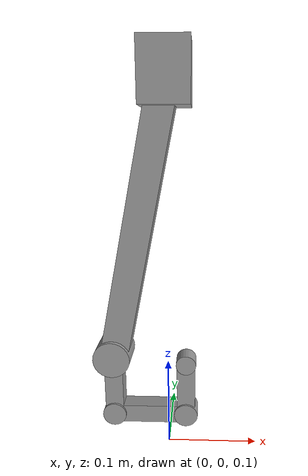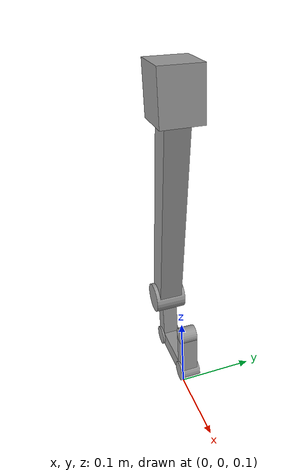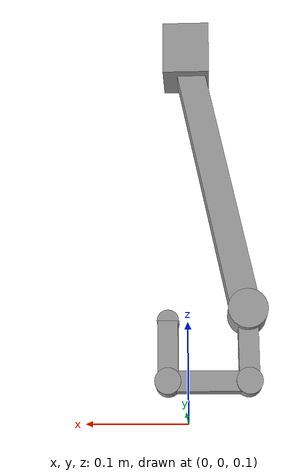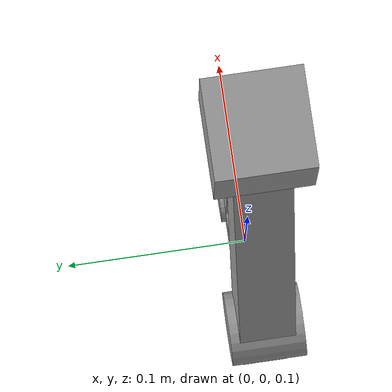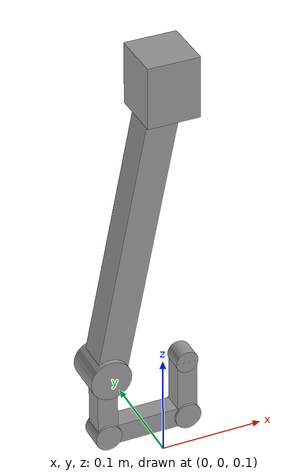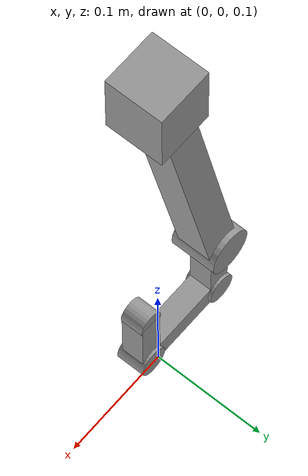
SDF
<?xml version='1.0'?>
<sdf version='1.6'>
  <model name='Hook_01'>
    <model name='Hook_01'>
      <link name='hook_base'>
        <pose frame=''>-0 0 0.5 0 -0 0</pose>
        <inertial>
          <mass>0.01</mass>
          <inertia>
            <ixx>0.166667</ixx>
            <ixy>0</ixy>
            <ixz>0</ixz>
            <iyy>0.166667</iyy>
            <iyz>0</iyz>
            <izz>0.166667</izz>
          </inertia>
          <pose frame=''>0 0 0 0 -0 0</pose>
        </inertial>
        <gravity>1</gravity>
        <self_collide>0</self_collide>
        <kinematic>0</kinematic>
        <visual name='visual'>
          <pose frame=''>0 0 0 0 -0 0</pose>
          <geometry>
            <box>
              <size>0.05 0.05 0.06</size>
            </box>
          </geometry>
          <material>
            <lighting>1</lighting>
            <script>
              <uri>file://media/materials/scripts/gazebo.material</uri>
              <name>Gazebo/Grey</name>
            </script>
            <ambient>0.3 0.3 0.3 1</ambient>
            <diffuse>0.7 0.7 0.7 1</diffuse>
            <specular>0.01 0.01 0.01 1</specular>
            <emissive>0 0 0 1</emissive>
            <shader type='vertex'>
              <normal_map>__default__</normal_map>
            </shader>
          </material>
          <cast_shadows>1</cast_shadows>
          <transparency>0</transparency>
        </visual>
        <collision name='collision'>
          <laser_retro>0</laser_retro>
          <max_contacts>10</max_contacts>
          <pose frame=''>0 0 0 0 -0 0</pose>
          <geometry>
            <box>
              <size>0.05 0.05 0.06</size>
            </box>
          </geometry>
          <surface>
            <friction>
              <ode>
                <mu>1</mu>
                <mu2>1</mu2>
                <fdir1>0 0 0</fdir1>
                <slip1>0</slip1>
                <slip2>0</slip2>
              </ode>
              <torsional>
                <coefficient>1</coefficient>
                <patch_radius>0</patch_radius>
                <surface_radius>0</surface_radius>
                <use_patch_radius>1</use_patch_radius>
                <ode>
                  <slip>0</slip>
                </ode>
              </torsional>
            </friction>
            <bounce>
              <restitution_coefficient>0</restitution_coefficient>
              <threshold>1e+06</threshold>
            </bounce>
            <contact>
              <collide_without_contact>0</collide_without_contact>
              <collide_without_contact_bitmask>1</collide_without_contact_bitmask>
              <collide_bitmask>1</collide_bitmask>
              <ode>
                <soft_cfm>0</soft_cfm>
                <soft_erp>0.2</soft_erp>
                <kp>1e+13</kp>
                <kd>1</kd>
                <max_vel>0.01</max_vel>
                <min_depth>0</min_depth>
              </ode>
              <bullet>
                <split_impulse>1</split_impulse>
                <split_impulse_penetration_threshold>-0.01</split_impulse_penetration_threshold>
                <soft_cfm>0</soft_cfm>
                <soft_erp>0.2</soft_erp>
                <kp>1e+13</kp>
                <kd>1</kd>
              </bullet>
            </contact>
          </surface>
        </collision>
      </link>
      <link name='arm'>
        <pose frame=''>-0 0 0.35 0 -0 0</pose>
        <inertial>
          <mass>0.02</mass>
          <inertia>
            <ixx>0.166667</ixx>
            <ixy>0</ixy>
            <ixz>0</ixz>
            <iyy>0.166667</iyy>
            <iyz>0</iyz>
            <izz>0.166667</izz>
          </inertia>
          <pose frame=''>0 0 0 0 -0 0</pose>
        </inertial>
        <gravity>1</gravity>
        <self_collide>0</self_collide>
        <kinematic>0</kinematic>
        <visual name='visual'>
          <pose frame=''>-0.03 0 0 0 0.2 0</pose>
          <geometry>
            <box>
              <size>0.03 0.03 0.3</size>
            </box>
          </geometry>
          <material>
            <lighting>1</lighting>
            <script>
              <uri>file://media/materials/scripts/gazebo.material</uri>
              <name>Gazebo/Grey</name>
            </script>
            <ambient>0.3 0.3 0.3 1</ambient>
            <diffuse>0.7 0.7 0.7 1</diffuse>
            <specular>0.01 0.01 0.01 1</specular>
            <emissive>0 0 0 1</emissive>
            <shader type='vertex'>
              <normal_map>__default__</normal_map>
            </shader>
          </material>
          <cast_shadows>1</cast_shadows>
          <transparency>0</transparency>
        </visual>
        <collision name='collision'>
          <laser_retro>0</laser_retro>
          <max_contacts>10</max_contacts>
          <pose frame=''>-0.03 0 0 0 0.2 0</pose>
          <geometry>
            <box>
              <size>0.03 0.03 0.3</size>
            </box>
          </geometry>
          <surface>
            <friction>
              <ode>
                <mu>1</mu>
                <mu2>1</mu2>
                <fdir1>0 0 0</fdir1>
                <slip1>0</slip1>
                <slip2>0</slip2>
              </ode>
              <torsional>
                <coefficient>1</coefficient>
                <patch_radius>0</patch_radius>
                <surface_radius>0</surface_radius>
                <use_patch_radius>1</use_patch_radius>
                <ode>
                  <slip>0</slip>
                </ode>
              </torsional>
            </friction>
            <bounce>
              <restitution_coefficient>0</restitution_coefficient>
              <threshold>1e+06</threshold>
            </bounce>
            <contact>
              <collide_without_contact>0</collide_without_contact>
              <collide_without_contact_bitmask>1</collide_without_contact_bitmask>
              <collide_bitmask>1</collide_bitmask>
              <ode>
                <soft_cfm>0</soft_cfm>
                <soft_erp>0.2</soft_erp>
                <kp>1e+13</kp>
                <kd>1</kd>
                <max_vel>0.01</max_vel>
                <min_depth>0</min_depth>
              </ode>
              <bullet>
                <split_impulse>1</split_impulse>
                <split_impulse_penetration_threshold>-0.01</split_impulse_penetration_threshold>
                <soft_cfm>0</soft_cfm>
                <soft_erp>0.2</soft_erp>
                <kp>1e+13</kp>
                <kd>1</kd>
              </bullet>
            </contact>
          </surface>
        </collision>
      </link>
      <link name='ankle'>
        <pose frame=''>-0.06 0 0.21 1.57 -0 0</pose>
        <inertial>
          <mass>0.01</mass>
          <inertia>
            <ixx>0.145833</ixx>
            <ixy>0</ixy>
            <ixz>0</ixz>
            <iyy>0.145833</iyy>
            <iyz>0</iyz>
            <izz>0.125</izz>
          </inertia>
          <pose frame=''>0 0 0 0 -0 0</pose>
        </inertial>
        <gravity>1</gravity>
        <self_collide>0</self_collide>
        <kinematic>0</kinematic>
        <visual name='visual'>
          <pose frame=''>0 0 0 0 -0 0</pose>
          <geometry>
            <cylinder>
              <radius>0.02</radius>
              <length>0.04</length>
            </cylinder>
          </geometry>
          <material>
            <lighting>1</lighting>
            <script>
              <uri>file://media/materials/scripts/gazebo.material</uri>
              <name>Gazebo/Grey</name>
            </script>
            <ambient>0.3 0.3 0.3 1</ambient>
            <diffuse>0.7 0.7 0.7 1</diffuse>
            <specular>0.01 0.01 0.01 1</specular>
            <emissive>0 0 0 1</emissive>
            <shader type='vertex'>
              <normal_map>__default__</normal_map>
            </shader>
          </material>
          <cast_shadows>1</cast_shadows>
          <transparency>0</transparency>
        </visual>
        <collision name='collision'>
          <laser_retro>0</laser_retro>
          <max_contacts>10</max_contacts>
          <pose frame=''>0 0 0 0 -0 0</pose>
          <geometry>
            <cylinder>
              <radius>0.02</radius>
              <length>0.04</length>
            </cylinder>
          </geometry>
          <surface>
            <friction>
              <ode>
                <mu>1</mu>
                <mu2>1</mu2>
                <fdir1>0 0 0</fdir1>
                <slip1>0</slip1>
                <slip2>0</slip2>
              </ode>
              <torsional>
                <coefficient>1</coefficient>
                <patch_radius>0</patch_radius>
                <surface_radius>0</surface_radius>
                <use_patch_radius>1</use_patch_radius>
                <ode>
                  <slip>0</slip>
                </ode>
              </torsional>
            </friction>
            <bounce>
              <restitution_coefficient>0</restitution_coefficient>
              <threshold>1e+06</threshold>
            </bounce>
            <contact>
              <collide_without_contact>0</collide_without_contact>
              <collide_without_contact_bitmask>1</collide_without_contact_bitmask>
              <collide_bitmask>1</collide_bitmask>
              <ode>
                <soft_cfm>0</soft_cfm>
                <soft_erp>0.2</soft_erp>
                <kp>1e+13</kp>
                <kd>1</kd>
                <max_vel>0.01</max_vel>
                <min_depth>0</min_depth>
              </ode>
              <bullet>
                <split_impulse>1</split_impulse>
                <split_impulse_penetration_threshold>-0.01</split_impulse_penetration_threshold>
                <soft_cfm>0</soft_cfm>
                <soft_erp>0.2</soft_erp>
                <kp>1e+13</kp>
                <kd>1</kd>
              </bullet>
            </contact>
          </surface>
        </collision>
      </link>
      <link name='bone_1'>
        <pose frame=''>-0.06 0 0.18 0 -0 0</pose>
        <inertial>
          <mass>0.01</mass>
          <inertia>
            <ixx>0.166667</ixx>
            <ixy>0</ixy>
            <ixz>0</ixz>
            <iyy>0.166667</iyy>
            <iyz>0</iyz>
            <izz>0.166667</izz>
          </inertia>
          <pose frame=''>0 0 0 0 -0 0</pose>
        </inertial>
        <self_collide>0</self_collide>
        <kinematic>0</kinematic>
        <gravity>1</gravity>
        <visual name='visual'>
          <pose frame=''>0 0 0 0 -0 0</pose>
          <geometry>
            <box>
              <size>0.02 0.02 0.08</size>
            </box>
          </geometry>
          <material>
            <lighting>1</lighting>
            <script>
              <uri>file://media/materials/scripts/gazebo.material</uri>
              <name>Gazebo/Grey</name>
            </script>
            <ambient>0.3 0.3 0.3 1</ambient>
            <diffuse>0.7 0.7 0.7 1</diffuse>
            <specular>0.01 0.01 0.01 1</specular>
            <emissive>0 0 0 1</emissive>
            <shader type='vertex'>
              <normal_map>__default__</normal_map>
            </shader>
          </material>
          <cast_shadows>1</cast_shadows>
          <transparency>0</transparency>
        </visual>
        <collision name='collision'>
          <laser_retro>0</laser_retro>
          <max_contacts>10</max_contacts>
          <pose frame=''>0 0 0 0 -0 0</pose>
          <geometry>
            <box>
              <size>0.02 0.02 0.08</size>
            </box>
          </geometry>
          <surface>
            <friction>
              <ode>
                <mu>1</mu>
                <mu2>1</mu2>
                <fdir1>0 0 0</fdir1>
                <slip1>0</slip1>
                <slip2>0</slip2>
              </ode>
              <torsional>
                <coefficient>1</coefficient>
                <patch_radius>0</patch_radius>
                <surface_radius>0</surface_radius>
                <use_patch_radius>1</use_patch_radius>
                <ode>
                  <slip>0</slip>
                </ode>
              </torsional>
            </friction>
            <bounce>
              <restitution_coefficient>0</restitution_coefficient>
              <threshold>1e+06</threshold>
            </bounce>
            <contact>
              <collide_without_contact>0</collide_without_contact>
              <collide_without_contact_bitmask>1</collide_without_contact_bitmask>
              <collide_bitmask>1</collide_bitmask>
              <ode>
                <soft_cfm>0</soft_cfm>
                <soft_erp>0.2</soft_erp>
                <kp>1e+13</kp>
                <kd>1</kd>
                <max_vel>0.01</max_vel>
                <min_depth>0</min_depth>
              </ode>
              <bullet>
                <split_impulse>1</split_impulse>
                <split_impulse_penetration_threshold>-0.01</split_impulse_penetration_threshold>
                <soft_cfm>0</soft_cfm>
                <soft_erp>0.2</soft_erp>
                <kp>1e+13</kp>
                <kd>1</kd>
              </bullet>
            </contact>
          </surface>
        </collision>
      </link>
      <link name='finger_joint_1'>
        <pose frame=''>-0.06 0 0.14 1.57 -0 0</pose>
        <inertial>
          <mass>0.01</mass>
          <inertia>
            <ixx>0.145833</ixx>
            <ixy>0</ixy>
            <ixz>0</ixz>
            <iyy>0.145833</iyy>
            <iyz>0</iyz>
            <izz>0.125</izz>
          </inertia>
          <pose frame=''>0 0 0 0 -0 0</pose>
        </inertial>
        <self_collide>0</self_collide>
        <kinematic>0</kinematic>
        <gravity>1</gravity>
        <visual name='visual'>
          <pose frame=''>0 0 0 0 -0 0</pose>
          <geometry>
            <cylinder>
              <radius>0.013</radius>
              <length>0.025</length>
            </cylinder>
          </geometry>
          <material>
            <lighting>1</lighting>
            <script>
              <uri>file://media/materials/scripts/gazebo.material</uri>
              <name>Gazebo/Grey</name>
            </script>
            <ambient>0.3 0.3 0.3 1</ambient>
            <diffuse>0.7 0.7 0.7 1</diffuse>
            <specular>0.01 0.01 0.01 1</specular>
            <emissive>0 0 0 1</emissive>
            <shader type='vertex'>
              <normal_map>__default__</normal_map>
            </shader>
          </material>
          <cast_shadows>1</cast_shadows>
          <transparency>0</transparency>
        </visual>
        <collision name='collision'>
          <laser_retro>0</laser_retro>
          <max_contacts>10</max_contacts>
          <pose frame=''>0 0 0 0 -0 0</pose>
          <geometry>
            <cylinder>
              <radius>0.013</radius>
              <length>0.025</length>
            </cylinder>
          </geometry>
          <surface>
            <friction>
              <ode>
                <mu>1</mu>
                <mu2>1</mu2>
                <fdir1>0 0 0</fdir1>
                <slip1>0</slip1>
                <slip2>0</slip2>
              </ode>
              <torsional>
                <coefficient>1</coefficient>
                <patch_radius>0</patch_radius>
                <surface_radius>0</surface_radius>
                <use_patch_radius>1</use_patch_radius>
                <ode>
                  <slip>0</slip>
                </ode>
              </torsional>
            </friction>
            <bounce>
              <restitution_coefficient>0</restitution_coefficient>
              <threshold>1e+06</threshold>
            </bounce>
            <contact>
              <collide_without_contact>0</collide_without_contact>
              <collide_without_contact_bitmask>1</collide_without_contact_bitmask>
              <collide_bitmask>1</collide_bitmask>
              <ode>
                <soft_cfm>0</soft_cfm>
                <soft_erp>0.2</soft_erp>
                <kp>1e+13</kp>
                <kd>1</kd>
                <max_vel>0.01</max_vel>
                <min_depth>0</min_depth>
              </ode>
              <bullet>
                <split_impulse>1</split_impulse>
                <split_impulse_penetration_threshold>-0.01</split_impulse_penetration_threshold>
                <soft_cfm>0</soft_cfm>
                <soft_erp>0.2</soft_erp>
                <kp>1e+13</kp>
                <kd>1</kd>
              </bullet>
            </contact>
          </surface>
        </collision>
      </link>
      <link name='bone_2'>
        <pose frame=''>-0.02 0 0.14 0 -0 0</pose>
        <inertial>
          <mass>0.01</mass>
          <inertia>
            <ixx>0.166667</ixx>
            <ixy>0</ixy>
            <ixz>0</ixz>
            <iyy>0.166667</iyy>
            <iyz>0</iyz>
            <izz>0.166667</izz>
          </inertia>
          <pose frame=''>0 0 0 0 -0 0</pose>
        </inertial>
        <self_collide>0</self_collide>
        <kinematic>0</kinematic>
        <gravity>1</gravity>
        <visual name='visual'>
          <pose frame=''>0 0 0 0 -0 0</pose>
          <geometry>
            <box>
              <size>0.08 0.02 0.02</size>
            </box>
          </geometry>
          <material>
            <lighting>1</lighting>
            <script>
              <uri>file://media/materials/scripts/gazebo.material</uri>
              <name>Gazebo/Grey</name>
            </script>
            <ambient>0.3 0.3 0.3 1</ambient>
            <diffuse>0.7 0.7 0.7 1</diffuse>
            <specular>0.01 0.01 0.01 1</specular>
            <emissive>0 0 0 1</emissive>
            <shader type='vertex'>
              <normal_map>__default__</normal_map>
            </shader>
          </material>
          <cast_shadows>1</cast_shadows>
          <transparency>0</transparency>
        </visual>
        <collision name='collision'>
          <laser_retro>0</laser_retro>
          <max_contacts>10</max_contacts>
          <pose frame=''>0 0 0 0 -0 0</pose>
          <geometry>
            <box>
              <size>0.08 0.02 0.02</size>
            </box>
          </geometry>
          <surface>
            <friction>
              <ode>
                <mu>1</mu>
                <mu2>1</mu2>
                <fdir1>0 0 0</fdir1>
                <slip1>0</slip1>
                <slip2>0</slip2>
              </ode>
              <torsional>
                <coefficient>1</coefficient>
                <patch_radius>0</patch_radius>
                <surface_radius>0</surface_radius>
                <use_patch_radius>1</use_patch_radius>
                <ode>
                  <slip>0</slip>
                </ode>
              </torsional>
            </friction>
            <bounce>
              <restitution_coefficient>0</restitution_coefficient>
              <threshold>1e+06</threshold>
            </bounce>
            <contact>
              <collide_without_contact>0</collide_without_contact>
              <collide_without_contact_bitmask>1</collide_without_contact_bitmask>
              <collide_bitmask>1</collide_bitmask>
              <ode>
                <soft_cfm>0</soft_cfm>
                <soft_erp>0.2</soft_erp>
                <kp>1e+13</kp>
                <kd>1</kd>
                <max_vel>0.01</max_vel>
                <min_depth>0</min_depth>
              </ode>
              <bullet>
                <split_impulse>1</split_impulse>
                <split_impulse_penetration_threshold>-0.01</split_impulse_penetration_threshold>
                <soft_cfm>0</soft_cfm>
                <soft_erp>0.2</soft_erp>
                <kp>1e+13</kp>
                <kd>1</kd>
              </bullet>
            </contact>
          </surface>
        </collision>
      </link>
      <link name='finger_joint_2'>
        <pose frame=''>0.02 0 0.14 1.57 -0 0</pose>
        <inertial>
          <mass>0.01</mass>
          <inertia>
            <ixx>0.145833</ixx>
            <ixy>0</ixy>
            <ixz>0</ixz>
            <iyy>0.145833</iyy>
            <iyz>0</iyz>
            <izz>0.125</izz>
          </inertia>
          <pose frame=''>0 0 0 0 -0 0</pose>
        </inertial>
        <self_collide>0</self_collide>
        <kinematic>0</kinematic>
        <gravity>1</gravity>
        <visual name='visual'>
          <pose frame=''>0 0 0 0 -0 0</pose>
          <geometry>
            <cylinder>
              <radius>0.013</radius>
              <length>0.025</length>
            </cylinder>
          </geometry>
          <material>
            <lighting>1</lighting>
            <script>
              <uri>file://media/materials/scripts/gazebo.material</uri>
              <name>Gazebo/Grey</name>
            </script>
            <ambient>0.3 0.3 0.3 1</ambient>
            <diffuse>0.7 0.7 0.7 1</diffuse>
            <specular>0.01 0.01 0.01 1</specular>
            <emissive>0 0 0 1</emissive>
            <shader type='vertex'>
              <normal_map>__default__</normal_map>
            </shader>
          </material>
          <cast_shadows>1</cast_shadows>
          <transparency>0</transparency>
        </visual>
        <collision name='collision'>
          <laser_retro>0</laser_retro>
          <max_contacts>10</max_contacts>
          <pose frame=''>0 0 0 0 -0 0</pose>
          <geometry>
            <cylinder>
              <radius>0.013</radius>
              <length>0.025</length>
            </cylinder>
          </geometry>
          <surface>
            <friction>
              <ode>
                <mu>1</mu>
                <mu2>1</mu2>
                <fdir1>0 0 0</fdir1>
                <slip1>0</slip1>
                <slip2>0</slip2>
              </ode>
              <torsional>
                <coefficient>1</coefficient>
                <patch_radius>0</patch_radius>
                <surface_radius>0</surface_radius>
                <use_patch_radius>1</use_patch_radius>
                <ode>
                  <slip>0</slip>
                </ode>
              </torsional>
            </friction>
            <bounce>
              <restitution_coefficient>0</restitution_coefficient>
              <threshold>1e+06</threshold>
            </bounce>
            <contact>
              <collide_without_contact>0</collide_without_contact>
              <collide_without_contact_bitmask>1</collide_without_contact_bitmask>
              <collide_bitmask>1</collide_bitmask>
              <ode>
                <soft_cfm>0</soft_cfm>
                <soft_erp>0.2</soft_erp>
                <kp>1e+13</kp>
                <kd>1</kd>
                <max_vel>0.01</max_vel>
                <min_depth>0</min_depth>
              </ode>
              <bullet>
                <split_impulse>1</split_impulse>
                <split_impulse_penetration_threshold>-0.01</split_impulse_penetration_threshold>
                <soft_cfm>0</soft_cfm>
                <soft_erp>0.2</soft_erp>
                <kp>1e+13</kp>
                <kd>1</kd>
              </bullet>
            </contact>
          </surface>
        </collision>
      </link>
      <link name='bone_3'>
        <pose frame=''>0.02 0 0.17 0 -0 0</pose>
        <inertial>
          <mass>0.01</mass>
          <inertia>
            <ixx>0.166667</ixx>
            <ixy>0</ixy>
            <ixz>0</ixz>
            <iyy>0.166667</iyy>
            <iyz>0</iyz>
            <izz>0.166667</izz>
          </inertia>
          <pose frame=''>0 0 0 0 -0 0</pose>
        </inertial>
        <self_collide>0</self_collide>
        <kinematic>0</kinematic>
        <gravity>1</gravity>
        <visual name='visual'>
          <pose frame=''>0 0 0 0 -0 0</pose>
          <geometry>
            <box>
              <size>0.02 0.02 0.06</size>
            </box>
          </geometry>
          <material>
            <lighting>1</lighting>
            <script>
              <uri>file://media/materials/scripts/gazebo.material</uri>
              <name>Gazebo/Grey</name>
            </script>
            <ambient>0.3 0.3 0.3 1</ambient>
            <diffuse>0.7 0.7 0.7 1</diffuse>
            <specular>0.01 0.01 0.01 1</specular>
            <emissive>0 0 0 1</emissive>
            <shader type='vertex'>
              <normal_map>__default__</normal_map>
            </shader>
          </material>
          <cast_shadows>1</cast_shadows>
          <transparency>0</transparency>
        </visual>
        <collision name='collision'>
          <laser_retro>0</laser_retro>
          <max_contacts>10</max_contacts>
          <pose frame=''>0 0 0 0 -0 0</pose>
          <geometry>
            <box>
              <size>0.02 0.02 0.06</size>
            </box>
          </geometry>
          <surface>
            <friction>
              <ode>
                <mu>1</mu>
                <mu2>1</mu2>
                <fdir1>0 0 0</fdir1>
                <slip1>0</slip1>
                <slip2>0</slip2>
              </ode>
              <torsional>
                <coefficient>1</coefficient>
                <patch_radius>0</patch_radius>
                <surface_radius>0</surface_radius>
                <use_patch_radius>1</use_patch_radius>
                <ode>
                  <slip>0</slip>
                </ode>
              </torsional>
            </friction>
            <bounce>
              <restitution_coefficient>0</restitution_coefficient>
              <threshold>1e+06</threshold>
            </bounce>
            <contact>
              <collide_without_contact>0</collide_without_contact>
              <collide_without_contact_bitmask>1</collide_without_contact_bitmask>
              <collide_bitmask>1</collide_bitmask>
              <ode>
                <soft_cfm>0</soft_cfm>
                <soft_erp>0.2</soft_erp>
                <kp>1e+13</kp>
                <kd>1</kd>
                <max_vel>0.01</max_vel>
                <min_depth>0</min_depth>
              </ode>
              <bullet>
                <split_impulse>1</split_impulse>
                <split_impulse_penetration_threshold>-0.01</split_impulse_penetration_threshold>
                <soft_cfm>0</soft_cfm>
                <soft_erp>0.2</soft_erp>
                <kp>1e+13</kp>
                <kd>1</kd>
              </bullet>
            </contact>
          </surface>
        </collision>
      </link>
      <link name='finger_tip'>
        <pose frame=''>0.02 0 0.2 1.57 -0 0</pose>
        <inertial>
          <mass>0.01</mass>
          <inertia>
            <ixx>0.145833</ixx>
            <ixy>0</ixy>
            <ixz>0</ixz>
            <iyy>0.145833</iyy>
            <iyz>0</iyz>
            <izz>0.125</izz>
          </inertia>
          <pose frame=''>0 0 0 0 -0 0</pose>
        </inertial>
        <self_collide>0</self_collide>
        <kinematic>0</kinematic>
        <gravity>1</gravity>
        <visual name='visual'>
          <pose frame=''>0 0 0 0 -0 0</pose>
          <geometry>
            <cylinder>
              <radius>0.011</radius>
              <length>0.02</length>
            </cylinder>
          </geometry>
          <material>
            <lighting>1</lighting>
            <script>
              <uri>file://media/materials/scripts/gazebo.material</uri>
              <name>Gazebo/Grey</name>
            </script>
            <ambient>0.3 0.3 0.3 1</ambient>
            <diffuse>0.7 0.7 0.7 1</diffuse>
            <specular>0.01 0.01 0.01 1</specular>
            <emissive>0 0 0 1</emissive>
            <shader type='vertex'>
              <normal_map>__default__</normal_map>
            </shader>
          </material>
          <cast_shadows>1</cast_shadows>
          <transparency>0</transparency>
        </visual>
        <collision name='collision'>
          <laser_retro>0</laser_retro>
          <max_contacts>10</max_contacts>
          <pose frame=''>0 0 0 0 -0 0</pose>
          <geometry>
            <cylinder>
              <radius>0.011</radius>
              <length>0.02</length>
            </cylinder>
          </geometry>
          <surface>
            <friction>
              <ode>
                <mu>1</mu>
                <mu2>1</mu2>
                <fdir1>0 0 0</fdir1>
                <slip1>0</slip1>
                <slip2>0</slip2>
              </ode>
              <torsional>
                <coefficient>1</coefficient>
                <patch_radius>0</patch_radius>
                <surface_radius>0</surface_radius>
                <use_patch_radius>1</use_patch_radius>
                <ode>
                  <slip>0</slip>
                </ode>
              </torsional>
            </friction>
            <bounce>
              <restitution_coefficient>0</restitution_coefficient>
              <threshold>1e+06</threshold>
            </bounce>
            <contact>
              <collide_without_contact>0</collide_without_contact>
              <collide_without_contact_bitmask>1</collide_without_contact_bitmask>
              <collide_bitmask>1</collide_bitmask>
              <ode>
                <soft_cfm>0</soft_cfm>
                <soft_erp>0.2</soft_erp>
                <kp>1e+13</kp>
                <kd>1</kd>
                <max_vel>0.01</max_vel>
                <min_depth>0</min_depth>
              </ode>
              <bullet>
                <split_impulse>1</split_impulse>
                <split_impulse_penetration_threshold>-0.01</split_impulse_penetration_threshold>
                <soft_cfm>0</soft_cfm>
                <soft_erp>0.2</soft_erp>
                <kp>1e+13</kp>
                <kd>1</kd>
              </bullet>
            </contact>
          </surface>
        </collision>
      </link>
      <static>0</static>
      <allow_auto_disable>1</allow_auto_disable>
      <pose frame=''>0 0 0 0 -0 0</pose>
    </model>
    <joint name='ankle_JOINT_2' type='fixed'>
      <parent>Hook_01::ankle</parent>
      <child>Hook_01::bone_1</child>
      <pose frame=''>0 0 0 0 -0 0</pose>
      <physics>
        <ode>
          <limit>
            <cfm>0</cfm>
            <erp>0.2</erp>
          </limit>
          <suspension>
            <cfm>0</cfm>
            <erp>0.2</erp>
          </suspension>
        </ode>
      </physics>
    </joint>
    <joint name='arm_JOINT_1' type='fixed'>
      <parent>Hook_01::arm</parent>
      <child>Hook_01::ankle</child>
      <pose frame=''>0 0 0 0 -0 0</pose>
      <physics>
        <ode>
          <limit>
            <cfm>0</cfm>
            <erp>0.2</erp>
          </limit>
          <suspension>
            <cfm>0</cfm>
            <erp>0.2</erp>
          </suspension>
        </ode>
      </physics>
    </joint>
    <joint name='bone_1_JOINT_3' type='fixed'>
      <parent>Hook_01::bone_1</parent>
      <child>Hook_01::finger_joint_1</child>
      <pose frame=''>0 0 0 0 -0 0</pose>
      <physics>
        <ode>
          <limit>
            <cfm>0</cfm>
            <erp>0.2</erp>
          </limit>
          <suspension>
            <cfm>0</cfm>
            <erp>0.2</erp>
          </suspension>
        </ode>
      </physics>
    </joint>
    <joint name='bone_2_JOINT_5' type='fixed'>
      <parent>Hook_01::bone_2</parent>
      <child>Hook_01::finger_joint_2</child>
      <pose frame=''>0 0 0 0 -0 0</pose>
      <physics>
        <ode>
          <limit>
            <cfm>0</cfm>
            <erp>0.2</erp>
          </limit>
          <suspension>
            <cfm>0</cfm>
            <erp>0.2</erp>
          </suspension>
        </ode>
      </physics>
    </joint>
    <joint name='bone_3_JOINT_7' type='fixed'>
      <parent>Hook_01::bone_3</parent>
      <child>Hook_01::finger_tip</child>
      <pose frame=''>0 0 0 0 -0 0</pose>
      <physics>
        <ode>
          <limit>
            <cfm>0</cfm>
            <erp>0.2</erp>
          </limit>
          <suspension>
            <cfm>0</cfm>
            <erp>0.2</erp>
          </suspension>
        </ode>
      </physics>
    </joint>
    <joint name='finger_joint_1_JOINT_4' type='fixed'>
      <parent>Hook_01::finger_joint_1</parent>
      <child>Hook_01::bone_2</child>
      <pose frame=''>0 0 0 0 -0 0</pose>
      <physics>
        <ode>
          <limit>
            <cfm>0</cfm>
            <erp>0.2</erp>
          </limit>
          <suspension>
            <cfm>0</cfm>
            <erp>0.2</erp>
          </suspension>
        </ode>
      </physics>
    </joint>
    <joint name='finger_joint_2_JOINT_6' type='fixed'>
      <parent>Hook_01::finger_joint_2</parent>
      <child>Hook_01::bone_3</child>
      <pose frame=''>0 0 0 0 -0 0</pose>
      <physics>
        <ode>
          <limit>
            <cfm>0</cfm>
            <erp>0.2</erp>
          </limit>
          <suspension>
            <cfm>0</cfm>
            <erp>0.2</erp>
          </suspension>
        </ode>
      </physics>
    </joint>
    <joint name='hook_base_JOINT_0' type='fixed'>
      <parent>Hook_01::hook_base</parent>
      <child>Hook_01::arm</child>
      <pose frame=''>0 0 0 0 -0 0</pose>
      <physics>
        <ode>
          <limit>
            <cfm>0</cfm>
            <erp>0.2</erp>
          </limit>
          <suspension>
            <cfm>0</cfm>
            <erp>0.2</erp>
          </suspension>
        </ode>
      </physics>
    </joint>
    <static>0</static>
    <allow_auto_disable>1</allow_auto_disable>
  </model>
</sdf>
